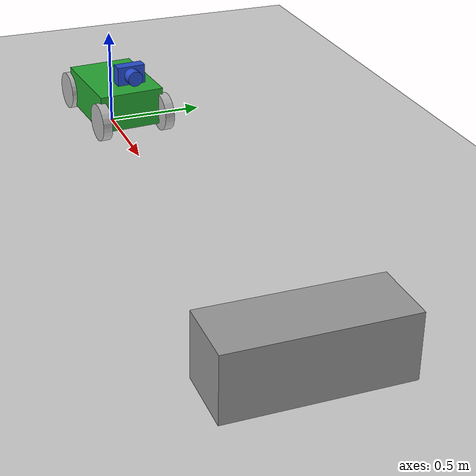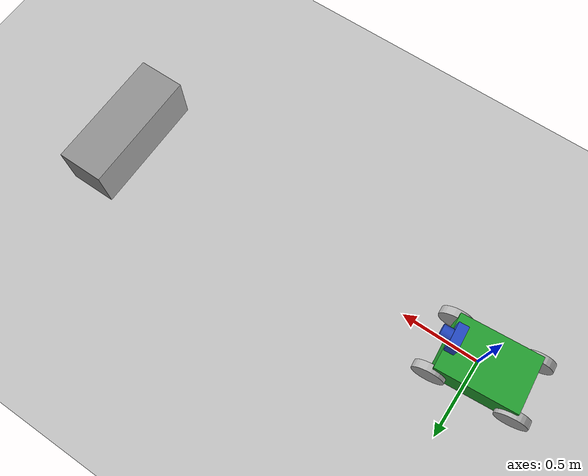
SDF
<sdf version="1.7">
 <world name="default">
  <model name="ground_plane">
   <static>1</static>
   <link name="link">
    <collision name="collision">
     <geometry><plane><normal>0 0 1</normal><size>100 100</size></plane></geometry>
     <surface>
      <contact><collide_bitmask>65535</collide_bitmask></contact>
      <friction><ode><mu>100</mu><mu2>50</mu2></ode></friction>
     </surface>
    </collision>
    <visual name="visual">
     <cast_shadows>0</cast_shadows>
     <geometry><plane><normal>0 0 1</normal><size>100 100</size></plane></geometry>
     <material>
      <script><uri>file://media/materials/scripts/gazebo.material</uri><name>Gazebo/Grey</name></script>
     </material>
    </visual>
   </link>
  </model>
  <model name="greenguard">
   <link name="base_link">
    <inertial>
     <pose>0.002066 0 0.101653 0 -0 0</pose>
     <mass>12.1</mass>
     <inertia>
      <ixx>0.166842</ixx>
      <ixy>0</ixy>
      <ixz>-0.00495868</ixz>
      <iyy>0.300473</iyy>
      <iyz>0</iyz>
      <izz>0.379006</izz>
     </inertia>
    </inertial>
    <collision name="base_link_collision">
     <pose>0 0 0.1 0 -0 0</pose>
     <geometry><box><size>0.5 0.35 0.2</size></box></geometry>
    </collision>
    <collision name="base_link_fixed_joint_lump__camera_link_collision_1">
     <pose>0.25 0 0.3 0 -0 0</pose>
     <geometry><box><size>0.12 0.15 0.1</size></box></geometry>
    </collision>
    <visual name="base_link_visual">
     <pose>0 0 0.1 0 -0 0</pose>
     <geometry><box><size>0.5 0.35 0.2</size></box></geometry>
     <material>
      <script><name>Gazebo/Green</name><uri>file://media/materials/scripts/gazebo.material</uri></script>
     </material>
    </visual>
    <visual name="base_link_fixed_joint_lump__camera_link_visual_1">
     <pose>0.22 0 0.3 0 -0 0</pose>
     <geometry><box><size>0.06 0.15 0.1</size></box></geometry>
     <material>
      <script><name>Gazebo/Blue</name><uri>file://media/materials/scripts/gazebo.material</uri></script>
     </material>
    </visual>
    <visual name="base_link_fixed_joint_lump__camera_link_visual_2">
     <pose>0.28 0 0.3 3.14159 1.57079 3.14159</pose>
     <geometry><cylinder><length>0.06</length><radius>0.04</radius></cylinder></geometry>
     <material>
      <script><name>Gazebo/Blue</name><uri>file://media/materials/scripts/gazebo.material</uri></script>
     </material>
    </visual>
    <sensor name="guard_cam" type="depth">
     <update_rate>20</update_rate>
     <visualize>1</visualize>
     <camera name="cam">
      <horizontal_fov>1.39626</horizontal_fov>
      <image><width>640</width><height>480</height><format>B8G8R8</format></image>
      <clip><near>0.02</near><far>300</far></clip>
      <noise><type>gaussian</type><mean>0</mean><stddev>0.007</stddev></noise>
     </camera>
     <plugin name="camera_controller" filename="libgazebo_ros_camera.so">
      <frame_name>camera_link_optical</frame_name>
      <min_depth>0.1</min_depth>
      <max_depth>500</max_depth>
     </plugin>
     <pose>0.25 0 0.3 0 -0 0</pose>
    </sensor>
   </link>
   <joint name="front_left_wheel_joint" type="revolute">
    <pose relative_to="base_link">0.25 -0.175 0.066667 -1.57079 1.57079 3.14159</pose>
    <parent>base_link</parent>
    <child>front_left_wheel_link</child>
    <axis>
     <xyz>0 0 1</xyz>
     <limit><effort>100</effort><velocity>100</velocity><lower>-1e+16</lower><upper>1e+16</upper></limit>
     <dynamics><spring_reference>0</spring_reference><spring_stiffness>0</spring_stiffness></dynamics>
    </axis>
   </joint>
   <link name="front_left_wheel_link">
    <pose relative_to="front_left_wheel_joint">0 0 0 0 -0 0</pose>
    <inertial>
     <pose>0.025 0 0 3.14159 1.57079 3.14159</pose>
     <mass>1</mass>
     <inertia>
      <ixx>0.00270833</ixx>
      <ixy>0</ixy>
      <ixz>0</ixz>
      <iyy>0.00270833</iyy>
      <iyz>0</iyz>
      <izz>0.005</izz>
     </inertia>
    </inertial>
    <collision name="front_left_wheel_link_collision">
     <geometry><cylinder><length>0.05</length><radius>0.1</radius></cylinder></geometry>
    </collision>
    <visual name="front_left_wheel_link_visual">
     <geometry><cylinder><length>0.05</length><radius>0.1</radius></cylinder></geometry>
    </visual>
   </link>
   <joint name="front_right_wheel_joint" type="revolute">
    <pose relative_to="base_link">0.25 0.175 0.066667 -1.57079 1.57079 3.14159</pose>
    <parent>base_link</parent>
    <child>front_right_wheel_link</child>
    <axis>
     <xyz>0 0 1</xyz>
     <limit><effort>100</effort><velocity>100</velocity><lower>-1e+16</lower><upper>1e+16</upper></limit>
     <dynamics><spring_reference>0</spring_reference><spring_stiffness>0</spring_stiffness></dynamics>
    </axis>
   </joint>
   <link name="front_right_wheel_link">
    <pose relative_to="front_right_wheel_joint">0 0 0 0 -0 0</pose>
    <inertial>
     <pose>0.025 0 0 3.14159 1.57079 3.14159</pose>
     <mass>1</mass>
     <inertia>
      <ixx>0.00270833</ixx>
      <ixy>0</ixy>
      <ixz>0</ixz>
      <iyy>0.00270833</iyy>
      <iyz>0</iyz>
      <izz>0.005</izz>
     </inertia>
    </inertial>
    <collision name="front_right_wheel_link_collision">
     <geometry><cylinder><length>0.05</length><radius>0.1</radius></cylinder></geometry>
    </collision>
    <visual name="front_right_wheel_link_visual">
     <geometry><cylinder><length>0.05</length><radius>0.1</radius></cylinder></geometry>
    </visual>
   </link>
   <joint name="rear_left_wheel_joint" type="revolute">
    <pose relative_to="base_link">-0.25 -0.175 0.066667 -1.57079 1.57079 3.14159</pose>
    <parent>base_link</parent>
    <child>rear_left_wheel_link</child>
    <axis>
     <xyz>0 0 1</xyz>
     <limit><effort>100</effort><velocity>100</velocity><lower>-1e+16</lower><upper>1e+16</upper></limit>
     <dynamics><spring_reference>0</spring_reference><spring_stiffness>0</spring_stiffness></dynamics>
    </axis>
   </joint>
   <link name="rear_left_wheel_link">
    <pose relative_to="rear_left_wheel_joint">0 0 0 0 -0 0</pose>
    <inertial>
     <pose>0.025 0 0 3.14159 1.57079 3.14159</pose>
     <mass>1</mass>
     <inertia>
      <ixx>0.00270833</ixx>
      <ixy>0</ixy>
      <ixz>0</ixz>
      <iyy>0.00270833</iyy>
      <iyz>0</iyz>
      <izz>0.005</izz>
     </inertia>
    </inertial>
    <collision name="rear_left_wheel_link_collision">
     <geometry><cylinder><length>0.05</length><radius>0.1</radius></cylinder></geometry>
    </collision>
    <visual name="rear_left_wheel_link_visual">
     <geometry><cylinder><length>0.05</length><radius>0.1</radius></cylinder></geometry>
    </visual>
   </link>
   <joint name="rear_right_wheel_joint" type="revolute">
    <pose relative_to="base_link">-0.25 0.175 0.066667 -1.57079 1.57079 3.14159</pose>
    <parent>base_link</parent>
    <child>rear_right_wheel_link</child>
    <axis>
     <xyz>0 0 1</xyz>
     <limit><effort>100</effort><velocity>100</velocity><lower>-1e+16</lower><upper>1e+16</upper></limit>
     <dynamics><spring_reference>0</spring_reference><spring_stiffness>0</spring_stiffness></dynamics>
    </axis>
   </joint>
   <link name="rear_right_wheel_link">
    <pose relative_to="rear_right_wheel_joint">0 0 0 0 -0 0</pose>
    <inertial>
     <pose>0.025 0 0 3.14159 1.57079 3.14159</pose>
     <mass>1</mass>
     <inertia>
      <ixx>0.00270833</ixx>
      <ixy>0</ixy>
      <ixz>0</ixz>
      <iyy>0.00270833</iyy>
      <iyz>0</iyz>
      <izz>0.005</izz>
     </inertia>
    </inertial>
    <collision name="rear_right_wheel_link_collision">
     <geometry><cylinder><length>0.05</length><radius>0.1</radius></cylinder></geometry>
    </collision>
    <visual name="rear_right_wheel_link_visual">
     <geometry><cylinder><length>0.05</length><radius>0.1</radius></cylinder></geometry>
    </visual>
   </link>
   <plugin name="gazebo_ros_joint_state_publisher" filename="libgazebo_ros_joint_state_publisher.so">
    <update_rate>10</update_rate>
    <joint_name>front_right_wheel_joint</joint_name>
    <joint_name>front_left_wheel_joint</joint_name>
    <joint_name>rear_right_wheel_joint</joint_name>
    <joint_name>rear_left_wheel_joint</joint_name>
   </plugin>
   <plugin name="gazebo_ros_joint_pose_trajectory" filename="libgazebo_ros_joint_pose_trajectory.so">
    <update_rate>10</update_rate>
   </plugin>
   <static>0</static>
   <plugin name="skid_steer_drive" filename="libgazebo_ros_diff_drive.so">
    <ros><namespace>/greenguard</namespace></ros>
    <num_wheel_pairs>2</num_wheel_pairs>
    <left_joint>front_left_wheel_joint</left_joint>
    <right_joint>front_right_wheel_joint</right_joint>
    <left_joint>rear_left_wheel_joint</left_joint>
    <right_joint>rear_right_wheel_joint</right_joint>
    <wheel_separation>0.4</wheel_separation>
    <wheel_separation>0.4</wheel_separation>
    <wheel_diameter>0.2</wheel_diameter>
    <wheel_diameter>0.2</wheel_diameter>
    <max_wheel_torque>10</max_wheel_torque>
    <max_wheel_acceleration>1.0</max_wheel_acceleration>
    <publish_odom>1</publish_odom>
    <publish_odom_tf>1</publish_odom_tf>
    <publish_wheel_tf>1</publish_wheel_tf>
    <odometry_frame>odom</odometry_frame>
    <robot_base_frame>base_link</robot_base_frame>
   </plugin>
   <pose>-0.027084 0.035811 0.033333 0 -0 0.074476</pose>
  </model>
  <model name="engel">
   <link name="link_0">
    <inertial>
     <mass>0.0664996</mass>
     <inertia>
      <ixx>0.00384233</ixx>
      <ixy>0</ixy>
      <ixz>0</ixz>
      <iyy>0.000944879</iyy>
      <iyz>0</iyz>
      <izz>0.00384725</izz>
     </inertia>
    </inertial>
    <pose>3e-06 -4e-06 0 0 -0 0</pose>
    <visual name="visual">
     <geometry><box><size>0.29274 0.780095 0.29122</size></box></geometry>
     <material>
      <lighting>1</lighting>
      <script><uri>file://media/materials/scripts/gazebo.material</uri><name>Gazebo/Grey</name></script>
      <shader type="pixel"/>
     </material>
    </visual>
    <collision name="collision">
     <geometry><box><size>0.29274 0.780095 0.29122</size></box></geometry>
     <surface>
      <friction>
       <ode><mu>1</mu><mu2>1</mu2><fdir1>0 0 0</fdir1><slip1>0</slip1><slip2>0</slip2></ode>
       <torsional>
        <coefficient>1</coefficient>
        <patch_radius>0</patch_radius>
        <surface_radius>0</surface_radius>
        <use_patch_radius>1</use_patch_radius>
        <ode><slip>0</slip></ode>
       </torsional>
      </friction>
      <bounce><restitution_coefficient>0</restitution_coefficient><threshold>1e+06</threshold></bounce>
      <contact>
       <collide_without_contact>0</collide_without_contact>
       <collide_without_contact_bitmask>1</collide_without_contact_bitmask>
       <collide_bitmask>1</collide_bitmask>
       <ode>
        <soft_cfm>0</soft_cfm>
        <soft_erp>0.2</soft_erp>
        <kp>1e+13</kp>
        <kd>1</kd>
        <max_vel>0.01</max_vel>
        <min_depth>0</min_depth>
       </ode>
       <bullet>
        <split_impulse>1</split_impulse>
        <split_impulse_penetration_threshold>-0.01</split_impulse_penetration_threshold>
        <soft_cfm>0</soft_cfm>
        <soft_erp>0.2</soft_erp>
        <kp>1e+13</kp>
        <kd>1</kd>
       </bullet>
      </contact>
     </surface>
    </collision>
   </link>
   <static>0</static>
   <pose>2.53125 -0.001995 0.146555 -0.002427 -1.9e-05 -0.003157</pose>
  </model>
 </world>
</sdf>
